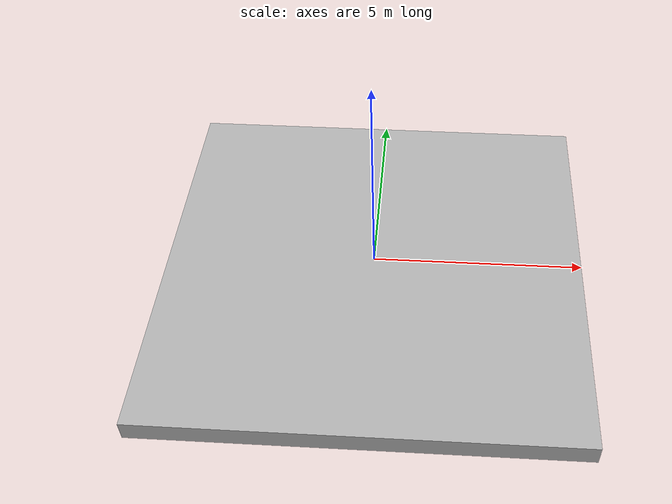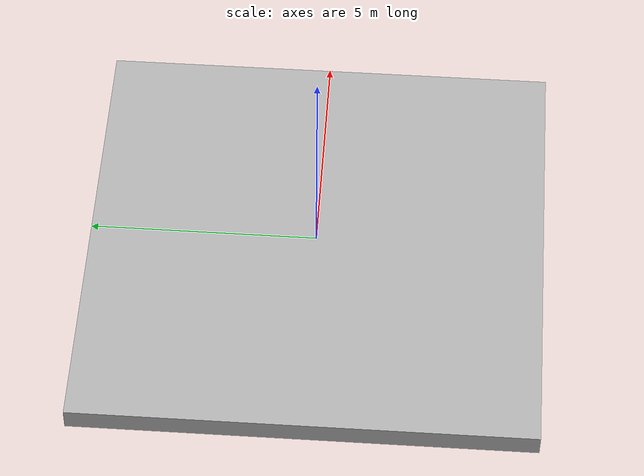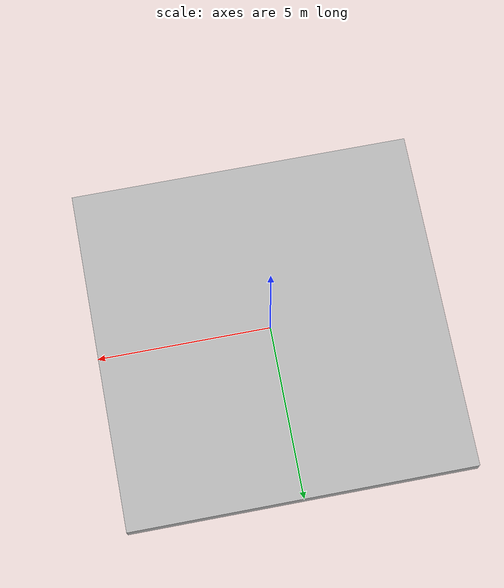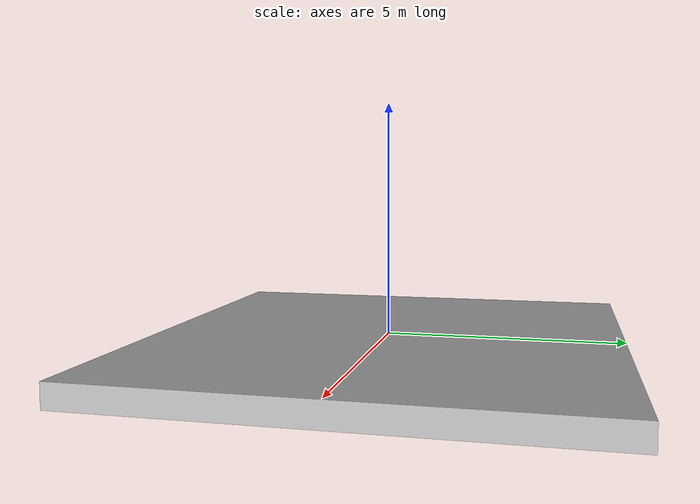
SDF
<?xml version='1.0'?>
<sdf version='1.6'>
    <model name='winsum_roadcross1_1'>
        <link name='link_0'>
            <pose frame=''>0 0 0 0 -0 0</pose>
            <visual name='visual'>
                <pose frame=''>0 0 0 0 -0 0</pose>
                <geometry>
                    <mesh>
                        <uri>model://winsum_roadcross1_1/meshes/roadcross_1_1.dae</uri>
                        <scale>1 1 1</scale>
                    </mesh>
                </geometry>
            </visual>
            <collision name='collision'>
                <pose frame=''>0 0 0 0 -0 0</pose>
                <geometry>
                    <mesh>
                        <uri>model://winsum_roadcross1_1/meshes/roadcross_1_1.dae</uri>
                        <scale>1 1 1</scale>
                    </mesh>
                </geometry>
            </collision>
        </link>
    <static>1</static>
    <allow_auto_disable>1</allow_auto_disable>
    </model>
</sdf>
